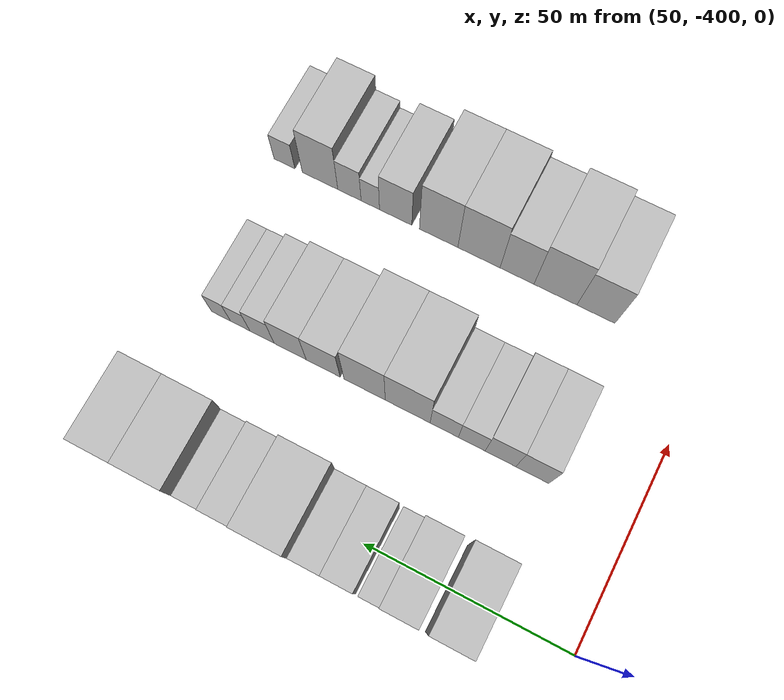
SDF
<sdf version="1.6">
 <world name="default">
  <model name="building_1">
   <static>1</static>
   <pose>50.0000 -375.0532 0 0.000000 0.000000 0.000000</pose>
   <link name="link">
    <pose>0 0 10.50 0 0 0</pose>
    <collision name="collision"><geometry><box><size>20.0000 9.8936 21.0000</size></box></geometry></collision>
    <visual name="visual">
     <cast_shadows>0</cast_shadows>
     <geometry><box><size>20.0000 9.8936 21.0000</size></box></geometry>
     <material>
      <script>
       <uri>model://HANNAS_wall/materials/scripts</uri>
       <uri>model://HANNAS_wall/materials/textures</uri>
       <name>vrc/HANNAS_wall</name>
      </script>
     </material>
    </visual>
   </link>
  </model>
  <model name="building_2">
   <static>1</static>
   <pose>50.0000 -363.7577 0 0.000000 0.000000 0.000000</pose>
   <link name="link">
    <pose>0 0 9.00 0 0 0</pose>
    <collision name="collision"><geometry><box><size>20.0000 8.6974 18.0000</size></box></geometry></collision>
    <visual name="visual">
     <cast_shadows>0</cast_shadows>
     <geometry><box><size>20.0000 8.6974 18.0000</size></box></geometry>
     <material>
      <script>
       <uri>model://HANNAS_wall/materials/scripts</uri>
       <uri>model://HANNAS_wall/materials/textures</uri>
       <name>vrc/HANNAS_wall</name>
      </script>
     </material>
    </visual>
   </link>
  </model>
  <model name="building_3">
   <static>1</static>
   <pose>50.0000 -356.9711 0 0.000000 0.000000 0.000000</pose>
   <link name="link">
    <pose>0 0 6.00 0 0 0</pose>
    <collision name="collision"><geometry><box><size>20.0000 4.8758 12.0000</size></box></geometry></collision>
    <visual name="visual">
     <cast_shadows>0</cast_shadows>
     <geometry><box><size>20.0000 4.8758 12.0000</size></box></geometry>
     <material>
      <script>
       <uri>model://HANNAS_wall/materials/scripts</uri>
       <uri>model://HANNAS_wall/materials/textures</uri>
       <name>vrc/HANNAS_wall</name>
      </script>
     </material>
    </visual>
   </link>
  </model>
  <model name="building_4">
   <static>1</static>
   <pose>50.0000 -349.7861 0 0.000000 0.000000 0.000000</pose>
   <link name="link">
    <pose>0 0 7.50 0 0 0</pose>
    <collision name="collision"><geometry><box><size>20.0000 7.4941 15.0000</size></box></geometry></collision>
    <visual name="visual">
     <cast_shadows>0</cast_shadows>
     <geometry><box><size>20.0000 7.4941 15.0000</size></box></geometry>
     <material>
      <script>
       <uri>model://HANNAS_wall/materials/scripts</uri>
       <uri>model://HANNAS_wall/materials/textures</uri>
       <name>vrc/HANNAS_wall</name>
      </script>
     </material>
    </visual>
   </link>
  </model>
  <model name="building_5">
   <static>1</static>
   <pose>50.0000 -342.3699 0 0.000000 0.000000 0.000000</pose>
   <link name="link">
    <pose>0 0 7.50 0 0 0</pose>
    <collision name="collision"><geometry><box><size>20.0000 7.3385 15.0000</size></box></geometry></collision>
    <visual name="visual">
     <cast_shadows>0</cast_shadows>
     <geometry><box><size>20.0000 7.3385 15.0000</size></box></geometry>
     <material>
      <script>
       <uri>model://HANNAS_wall/materials/scripts</uri>
       <uri>model://HANNAS_wall/materials/textures</uri>
       <name>vrc/HANNAS_wall</name>
      </script>
     </material>
    </visual>
   </link>
  </model>
  <model name="building_6">
   <static>1</static>
   <pose>50.0000 -332.7374 0 0.000000 0.000000 0.000000</pose>
   <link name="link">
    <pose>0 0 12.00 0 0 0</pose>
    <collision name="collision"><geometry><box><size>20.0000 11.9265 24.0000</size></box></geometry></collision>
    <visual name="visual">
     <cast_shadows>0</cast_shadows>
     <geometry><box><size>20.0000 11.9265 24.0000</size></box></geometry>
     <material>
      <script>
       <uri>model://HANNAS_wall/materials/scripts</uri>
       <uri>model://HANNAS_wall/materials/textures</uri>
       <name>vrc/HANNAS_wall</name>
      </script>
     </material>
    </visual>
   </link>
  </model>
  <model name="building_7">
   <static>1</static>
   <pose>50.0000 -322.6665 0 0.000000 0.000000 0.000000</pose>
   <link name="link">
    <pose>0 0 9.00 0 0 0</pose>
    <collision name="collision"><geometry><box><size>20.0000 8.2152 18.0000</size></box></geometry></collision>
    <visual name="visual">
     <cast_shadows>0</cast_shadows>
     <geometry><box><size>20.0000 8.2152 18.0000</size></box></geometry>
     <material>
      <script>
       <uri>model://HANNAS_wall/materials/scripts</uri>
       <uri>model://HANNAS_wall/materials/textures</uri>
       <name>vrc/HANNAS_wall</name>
      </script>
     </material>
    </visual>
   </link>
  </model>
  <model name="building_8">
   <static>1</static>
   <pose>50.0000 -315.2555 0 0.000000 0.000000 0.000000</pose>
   <link name="link">
    <pose>0 0 7.50 0 0 0</pose>
    <collision name="collision"><geometry><box><size>20.0000 6.6068 15.0000</size></box></geometry></collision>
    <visual name="visual">
     <cast_shadows>0</cast_shadows>
     <geometry><box><size>20.0000 6.6068 15.0000</size></box></geometry>
     <material>
      <script>
       <uri>model://HANNAS_wall/materials/scripts</uri>
       <uri>model://HANNAS_wall/materials/textures</uri>
       <name>vrc/HANNAS_wall</name>
      </script>
     </material>
    </visual>
   </link>
  </model>
  <model name="building_9">
   <static>1</static>
   <pose>50.0000 -306.0808 0 0.000000 0.000000 0.000000</pose>
   <link name="link">
    <pose>0 0 12.00 0 0 0</pose>
    <collision name="collision"><geometry><box><size>20.0000 11.7427 24.0000</size></box></geometry></collision>
    <visual name="visual">
     <cast_shadows>0</cast_shadows>
     <geometry><box><size>20.0000 11.7427 24.0000</size></box></geometry>
     <material>
      <script>
       <uri>model://HANNAS_wall/materials/scripts</uri>
       <uri>model://HANNAS_wall/materials/textures</uri>
       <name>vrc/HANNAS_wall</name>
      </script>
     </material>
    </visual>
   </link>
  </model>
  <model name="building_10">
   <static>1</static>
   <pose>50.0000 -295.1318 0 0.000000 0.000000 0.000000</pose>
   <link name="link">
    <pose>0 0 12.00 0 0 0</pose>
    <collision name="collision"><geometry><box><size>20.0000 10.1552 24.0000</size></box></geometry></collision>
    <visual name="visual">
     <cast_shadows>0</cast_shadows>
     <geometry><box><size>20.0000 10.1552 24.0000</size></box></geometry>
     <material>
      <script>
       <uri>model://HANNAS_wall/materials/scripts</uri>
       <uri>model://HANNAS_wall/materials/textures</uri>
       <name>vrc/HANNAS_wall</name>
      </script>
     </material>
    </visual>
   </link>
  </model>
  <model name="building_83">
   <static>1</static>
   <pose>90.0000 -375.9981 0 0.000000 0.000000 0.000000</pose>
   <link name="link">
    <pose>0 0 9.00 0 0 0</pose>
    <collision name="collision"><geometry><box><size>20.0000 8.0039 18.0000</size></box></geometry></collision>
    <visual name="visual">
     <cast_shadows>0</cast_shadows>
     <geometry><box><size>20.0000 8.0039 18.0000</size></box></geometry>
     <material>
      <script>
       <uri>model://HANNAS_wall/materials/scripts</uri>
       <uri>model://HANNAS_wall/materials/textures</uri>
       <name>vrc/HANNAS_wall</name>
      </script>
     </material>
    </visual>
   </link>
  </model>
  <model name="building_84">
   <static>1</static>
   <pose>90.0000 -368.2565 0 0.000000 0.000000 0.000000</pose>
   <link name="link">
    <pose>0 0 9.00 0 0 0</pose>
    <collision name="collision"><geometry><box><size>20.0000 7.4793 18.0000</size></box></geometry></collision>
    <visual name="visual">
     <cast_shadows>0</cast_shadows>
     <geometry><box><size>20.0000 7.4793 18.0000</size></box></geometry>
     <material>
      <script>
       <uri>model://HANNAS_wall/materials/scripts</uri>
       <uri>model://HANNAS_wall/materials/textures</uri>
       <name>vrc/HANNAS_wall</name>
      </script>
     </material>
    </visual>
   </link>
  </model>
  <model name="building_85">
   <static>1</static>
   <pose>90.0000 -361.2216 0 0.000000 0.000000 0.000000</pose>
   <link name="link">
    <pose>0 0 7.50 0 0 0</pose>
    <collision name="collision"><geometry><box><size>20.0000 6.5905 15.0000</size></box></geometry></collision>
    <visual name="visual">
     <cast_shadows>0</cast_shadows>
     <geometry><box><size>20.0000 6.5905 15.0000</size></box></geometry>
     <material>
      <script>
       <uri>model://HANNAS_wall/materials/scripts</uri>
       <uri>model://HANNAS_wall/materials/textures</uri>
       <name>vrc/HANNAS_wall</name>
      </script>
     </material>
    </visual>
   </link>
  </model>
  <model name="building_86">
   <static>1</static>
   <pose>90.0000 -354.4271 0 0.000000 0.000000 0.000000</pose>
   <link name="link">
    <pose>0 0 7.50 0 0 0</pose>
    <collision name="collision"><geometry><box><size>20.0000 6.9986 15.0000</size></box></geometry></collision>
    <visual name="visual">
     <cast_shadows>0</cast_shadows>
     <geometry><box><size>20.0000 6.9986 15.0000</size></box></geometry>
     <material>
      <script>
       <uri>model://HANNAS_wall/materials/scripts</uri>
       <uri>model://HANNAS_wall/materials/textures</uri>
       <name>vrc/HANNAS_wall</name>
      </script>
     </material>
    </visual>
   </link>
  </model>
  <model name="building_87">
   <static>1</static>
   <pose>90.0000 -345.3123 0 0.000000 0.000000 0.000000</pose>
   <link name="link">
    <pose>0 0 12.00 0 0 0</pose>
    <collision name="collision"><geometry><box><size>20.0000 11.2309 24.0000</size></box></geometry></collision>
    <visual name="visual">
     <cast_shadows>0</cast_shadows>
     <geometry><box><size>20.0000 11.2309 24.0000</size></box></geometry>
     <material>
      <script>
       <uri>model://HANNAS_wall/materials/scripts</uri>
       <uri>model://HANNAS_wall/materials/textures</uri>
       <name>vrc/HANNAS_wall</name>
      </script>
     </material>
    </visual>
   </link>
  </model>
  <model name="building_88">
   <static>1</static>
   <pose>90.0000 -334.4737 0 0.000000 0.000000 0.000000</pose>
   <link name="link">
    <pose>0 0 12.00 0 0 0</pose>
    <collision name="collision"><geometry><box><size>20.0000 10.4464 24.0000</size></box></geometry></collision>
    <visual name="visual">
     <cast_shadows>0</cast_shadows>
     <geometry><box><size>20.0000 10.4464 24.0000</size></box></geometry>
     <material>
      <script>
       <uri>model://HANNAS_wall/materials/scripts</uri>
       <uri>model://HANNAS_wall/materials/textures</uri>
       <name>vrc/HANNAS_wall</name>
      </script>
     </material>
    </visual>
   </link>
  </model>
  <model name="building_89">
   <static>1</static>
   <pose>90.0000 -323.9047 0 0.000000 0.000000 0.000000</pose>
   <link name="link">
    <pose>0 0 9.00 0 0 0</pose>
    <collision name="collision"><geometry><box><size>20.0000 8.6915 18.0000</size></box></geometry></collision>
    <visual name="visual">
     <cast_shadows>0</cast_shadows>
     <geometry><box><size>20.0000 8.6915 18.0000</size></box></geometry>
     <material>
      <script>
       <uri>model://HANNAS_wall/materials/scripts</uri>
       <uri>model://HANNAS_wall/materials/textures</uri>
       <name>vrc/HANNAS_wall</name>
      </script>
     </material>
    </visual>
   </link>
  </model>
  <model name="building_90">
   <static>1</static>
   <pose>90.0000 -315.4207 0 0.000000 0.000000 0.000000</pose>
   <link name="link">
    <pose>0 0 9.00 0 0 0</pose>
    <collision name="collision"><geometry><box><size>20.0000 8.2767 18.0000</size></box></geometry></collision>
    <visual name="visual">
     <cast_shadows>0</cast_shadows>
     <geometry><box><size>20.0000 8.2767 18.0000</size></box></geometry>
     <material>
      <script>
       <uri>model://HANNAS_wall/materials/scripts</uri>
       <uri>model://HANNAS_wall/materials/textures</uri>
       <name>vrc/HANNAS_wall</name>
      </script>
     </material>
    </visual>
   </link>
  </model>
  <model name="building_91">
   <static>1</static>
   <pose>90.0000 -308.0879 0 0.000000 0.000000 0.000000</pose>
   <link name="link">
    <pose>0 0 7.50 0 0 0</pose>
    <collision name="collision"><geometry><box><size>20.0000 6.3890 15.0000</size></box></geometry></collision>
    <visual name="visual">
     <cast_shadows>0</cast_shadows>
     <geometry><box><size>20.0000 6.3890 15.0000</size></box></geometry>
     <material>
      <script>
       <uri>model://HANNAS_wall/materials/scripts</uri>
       <uri>model://HANNAS_wall/materials/textures</uri>
       <name>vrc/HANNAS_wall</name>
      </script>
     </material>
    </visual>
   </link>
  </model>
  <model name="building_92">
   <static>1</static>
   <pose>90.0000 -302.3494 0 0.000000 0.000000 0.000000</pose>
   <link name="link">
    <pose>0 0 6.00 0 0 0</pose>
    <collision name="collision"><geometry><box><size>20.0000 5.0879 12.0000</size></box></geometry></collision>
    <visual name="visual">
     <cast_shadows>0</cast_shadows>
     <geometry><box><size>20.0000 5.0879 12.0000</size></box></geometry>
     <material>
      <script>
       <uri>model://HANNAS_wall/materials/scripts</uri>
       <uri>model://HANNAS_wall/materials/textures</uri>
       <name>vrc/HANNAS_wall</name>
      </script>
     </material>
    </visual>
   </link>
  </model>
  <model name="building_93">
   <static>1</static>
   <pose>90.0000 -297.3240 0 0.000000 0.000000 0.000000</pose>
   <link name="link">
    <pose>0 0 6.00 0 0 0</pose>
    <collision name="collision"><geometry><box><size>20.0000 4.9629 12.0000</size></box></geometry></collision>
    <visual name="visual">
     <cast_shadows>0</cast_shadows>
     <geometry><box><size>20.0000 4.9629 12.0000</size></box></geometry>
     <material>
      <script>
       <uri>model://HANNAS_wall/materials/scripts</uri>
       <uri>model://HANNAS_wall/materials/textures</uri>
       <name>vrc/HANNAS_wall</name>
      </script>
     </material>
    </visual>
   </link>
  </model>
  <model name="building_167">
   <static>1</static>
   <pose>130.0000 -373.2091 0 0.000000 0.000000 0.000000</pose>
   <link name="link">
    <pose>0 0 10.50 0 0 0</pose>
    <collision name="collision"><geometry><box><size>20.0000 9.5818 21.0000</size></box></geometry></collision>
    <visual name="visual">
     <cast_shadows>0</cast_shadows>
     <geometry><box><size>20.0000 9.5818 21.0000</size></box></geometry>
     <material>
      <script>
       <uri>model://HANNAS_wall/materials/scripts</uri>
       <uri>model://HANNAS_wall/materials/textures</uri>
       <name>vrc/HANNAS_wall</name>
      </script>
     </material>
    </visual>
   </link>
  </model>
  <model name="building_168">
   <static>1</static>
   <pose>130.0000 -362.9755 0 0.000000 0.000000 0.000000</pose>
   <link name="link">
    <pose>0 0 12.00 0 0 0</pose>
    <collision name="collision"><geometry><box><size>20.0000 10.8854 24.0000</size></box></geometry></collision>
    <visual name="visual">
     <cast_shadows>0</cast_shadows>
     <geometry><box><size>20.0000 10.8854 24.0000</size></box></geometry>
     <material>
      <script>
       <uri>model://HANNAS_wall/materials/scripts</uri>
       <uri>model://HANNAS_wall/materials/textures</uri>
       <name>vrc/HANNAS_wall</name>
      </script>
     </material>
    </visual>
   </link>
  </model>
  <model name="building_169">
   <static>1</static>
   <pose>130.0000 -353.1893 0 0.000000 0.000000 0.000000</pose>
   <link name="link">
    <pose>0 0 10.50 0 0 0</pose>
    <collision name="collision"><geometry><box><size>20.0000 8.6870 21.0000</size></box></geometry></collision>
    <visual name="visual">
     <cast_shadows>0</cast_shadows>
     <geometry><box><size>20.0000 8.6870 21.0000</size></box></geometry>
     <material>
      <script>
       <uri>model://HANNAS_wall/materials/scripts</uri>
       <uri>model://HANNAS_wall/materials/textures</uri>
       <name>vrc/HANNAS_wall</name>
      </script>
     </material>
    </visual>
   </link>
  </model>
  <model name="building_170">
   <static>1</static>
   <pose>130.0000 -343.3688 0 0.000000 0.000000 0.000000</pose>
   <link name="link">
    <pose>0 0 12.00 0 0 0</pose>
    <collision name="collision"><geometry><box><size>20.0000 10.9540 24.0000</size></box></geometry></collision>
    <visual name="visual">
     <cast_shadows>0</cast_shadows>
     <geometry><box><size>20.0000 10.9540 24.0000</size></box></geometry>
     <material>
      <script>
       <uri>model://HANNAS_wall/materials/scripts</uri>
       <uri>model://HANNAS_wall/materials/textures</uri>
       <name>vrc/HANNAS_wall</name>
      </script>
     </material>
    </visual>
   </link>
  </model>
  <model name="building_171">
   <static>1</static>
   <pose>130.0000 -332.8527 0 0.000000 0.000000 0.000000</pose>
   <link name="link">
    <pose>0 0 12.00 0 0 0</pose>
    <collision name="collision"><geometry><box><size>20.0000 10.0782 24.0000</size></box></geometry></collision>
    <visual name="visual">
     <cast_shadows>0</cast_shadows>
     <geometry><box><size>20.0000 10.0782 24.0000</size></box></geometry>
     <material>
      <script>
       <uri>model://HANNAS_wall/materials/scripts</uri>
       <uri>model://HANNAS_wall/materials/textures</uri>
       <name>vrc/HANNAS_wall</name>
      </script>
     </material>
    </visual>
   </link>
  </model>
  <model name="building_172">
   <static>1</static>
   <pose>130.0000 -321.5196 0 0.000000 0.000000 0.000000</pose>
   <link name="link">
    <pose>0 0 9.00 0 0 0</pose>
    <collision name="collision"><geometry><box><size>20.0000 8.5880 18.0000</size></box></geometry></collision>
    <visual name="visual">
     <cast_shadows>0</cast_shadows>
     <geometry><box><size>20.0000 8.5880 18.0000</size></box></geometry>
     <material>
      <script>
       <uri>model://HANNAS_wall/materials/scripts</uri>
       <uri>model://HANNAS_wall/materials/textures</uri>
       <name>vrc/HANNAS_wall</name>
      </script>
     </material>
    </visual>
   </link>
  </model>
  <model name="building_173">
   <static>1</static>
   <pose>130.0000 -314.7734 0 0.000000 0.000000 0.000000</pose>
   <link name="link">
    <pose>0 0 6.00 0 0 0</pose>
    <collision name="collision"><geometry><box><size>20.0000 4.9046 12.0000</size></box></geometry></collision>
    <visual name="visual">
     <cast_shadows>0</cast_shadows>
     <geometry><box><size>20.0000 4.9046 12.0000</size></box></geometry>
     <material>
      <script>
       <uri>model://HANNAS_wall/materials/scripts</uri>
       <uri>model://HANNAS_wall/materials/textures</uri>
       <name>vrc/HANNAS_wall</name>
      </script>
     </material>
    </visual>
   </link>
  </model>
  <model name="building_174">
   <static>1</static>
   <pose>130.0000 -309.1828 0 0.000000 0.000000 0.000000</pose>
   <link name="link">
    <pose>0 0 7.50 0 0 0</pose>
    <collision name="collision"><geometry><box><size>20.0000 6.2766 15.0000</size></box></geometry></collision>
    <visual name="visual">
     <cast_shadows>0</cast_shadows>
     <geometry><box><size>20.0000 6.2766 15.0000</size></box></geometry>
     <material>
      <script>
       <uri>model://HANNAS_wall/materials/scripts</uri>
       <uri>model://HANNAS_wall/materials/textures</uri>
       <name>vrc/HANNAS_wall</name>
      </script>
     </material>
    </visual>
   </link>
  </model>
  <model name="building_175">
   <static>1</static>
   <pose>130.0000 -301.2279 0 0.000000 0.000000 0.000000</pose>
   <link name="link">
    <pose>0 0 10.50 0 0 0</pose>
    <collision name="collision"><geometry><box><size>20.0000 9.6331 21.0000</size></box></geometry></collision>
    <visual name="visual">
     <cast_shadows>0</cast_shadows>
     <geometry><box><size>20.0000 9.6331 21.0000</size></box></geometry>
     <material>
      <script>
       <uri>model://HANNAS_wall/materials/scripts</uri>
       <uri>model://HANNAS_wall/materials/textures</uri>
       <name>vrc/HANNAS_wall</name>
      </script>
     </material>
    </visual>
   </link>
  </model>
  <model name="building_176">
   <static>1</static>
   <pose>130.0000 -291.5539 0 0.000000 0.000000 0.000000</pose>
   <link name="link">
    <pose>0 0 6.00 0 0 0</pose>
    <collision name="collision"><geometry><box><size>20.0000 5.7150 12.0000</size></box></geometry></collision>
    <visual name="visual">
     <cast_shadows>0</cast_shadows>
     <geometry><box><size>20.0000 5.7150 12.0000</size></box></geometry>
     <material>
      <script>
       <uri>model://HANNAS_wall/materials/scripts</uri>
       <uri>model://HANNAS_wall/materials/textures</uri>
       <name>vrc/HANNAS_wall</name>
      </script>
     </material>
    </visual>
   </link>
  </model>
 </world>
</sdf>
